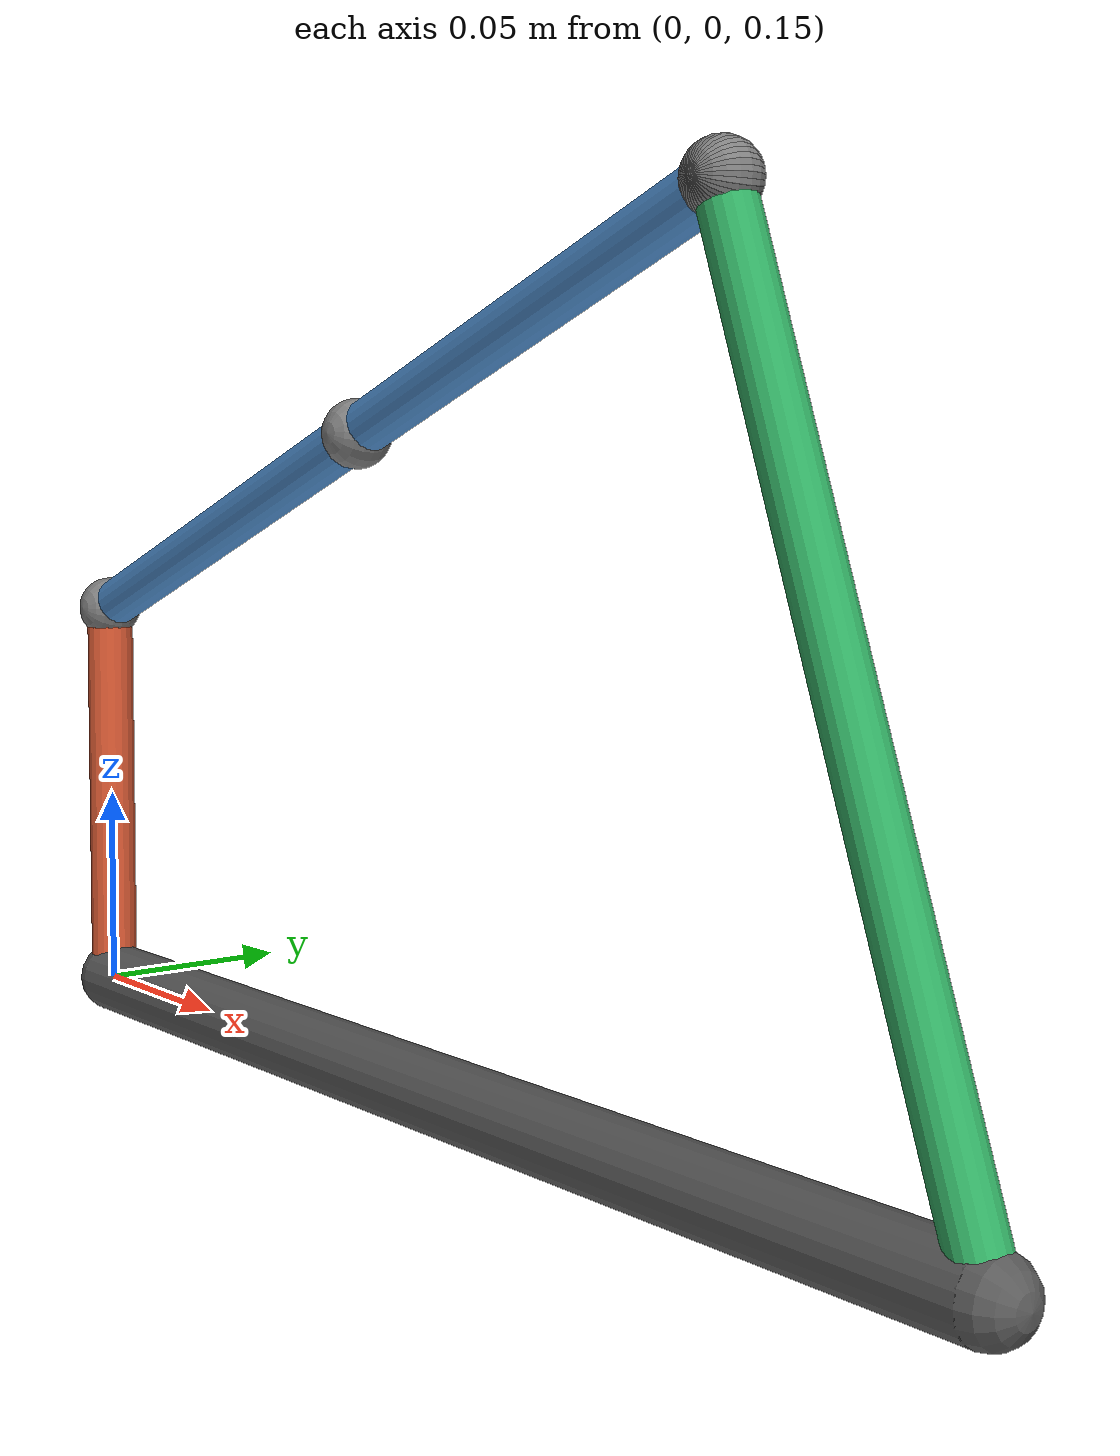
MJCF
<mujoco model="force_transfer_fourbar">
  <compiler angle="radian" />
  <option gravity="0 0 0" timestep=".0005" integrator="implicitfast" jacobian="dense" solver="Newton" iterations="100" tolerance="1e-12">
    <flag contact="disable" island="disable" energy="enable" diagexact="enable" />
  </option>
  <default>
    <joint limited="false" damping="0" armature="0" />
    <geom contype="0" conaffinity="0" />
    <site size=".008" />
  </default>
  <worldbody>
    <body name="frame" pos="0 0 .15" quat="0.70710678118654757 0.70710678118654746 0 0">
      <geom type="capsule" fromto="0 0 0 0.29999999999999999 0 0" size=".009" rgba=".35 .35 .35 1" />
      <body name="crank" pos="0 0 0" quat="0.70710678118654757 0 0 0.70710678118654746">
        <joint name="input" axis="0 0 1" pos="0 0 0" />
        <inertial pos="0.050000000000000003 0 0" mass="0.3" diaginertia="5.4e-06 0.00025270000000000007 0.00025270000000000007" />
        <geom type="capsule" fromto="0 0 0 0.10000000000000001 0 0" size="0.006" rgba=".85 .35 .2 1" />
        <site name="input_tip" pos="0.10000000000000001 0 0" />
        <body name="coupler" pos="0.10000000000000001 0 0" quat="0.82304692171648586 0 0 -0.56797338375404249">
          <joint name="coupler" axis="0 0 1" pos="0 0 0" />
          <inertial pos="0.125 0 0" mass="0.1" diaginertia="1.8000000000000001e-06 0.0005217333333333334 0.0005217333333333334" />
          <geom type="capsule" fromto="0 0 0 0.25 0 0" size="0.006" rgba=".3 .55 .8 1" />
          <site name="coupler_tip" pos="0.25 0 0" />
          <site name="weld_c" pos="0.125 0 0" />
        </body>
      </body>
      <body name="rocker" pos="0.29999999999999999 0 0" quat="0.57821789266207979 0 0 0.81588238650275058">
        <joint name="output" axis="0 0 1" pos="0 0 0" />
        <inertial pos="0.10000000000000001 0 0" mass="0.4" diaginertia="7.2000000000000005e-06 0.0013369333333333336 0.0013369333333333336" />
        <geom type="capsule" fromto="0 0 0 0.20000000000000001 0 0" size="0.006" rgba=".2 .7 .4 1" />
        <site name="output_tip" pos="0.20000000000000001 0 0" />
        <body name="shadow" pos="0.19374999999999992 0.24992186278915257 0" quat="0.71589105316381774 0 0 -0.69821200218844692">
          <joint name="shadow" axis="0 0 1" pos="0.25 0 0" />
          <inertial pos="0.125 0 0" mass="0.1" diaginertia="1.8000000000000001e-06 0.0005217333333333334 0.0005217333333333334" />
          <geom type="capsule" fromto="0 0 0 0.25 0 0" size="0.006" rgba=".2 .8 1 .3" />
          <site name="weld_s" pos="0.125 0 0" />
        </body>
      </body>
    </body>
    <light pos=".2 -1 1" dir="0 1 -1" />
  </worldbody>
  <equality>
    <weld site1="weld_c" site2="weld_s" torquescale=".1" name="loop" solref="0.00999990991577752 1" solimp="0.9890998075176296 0.9890998075176296 .001" />
  </equality>
  <actuator>
    <position name="drive" joint="input" kp="500" kv="5" />
  </actuator>
  <custom>
    <numeric name="reference" data="1.5707963267948966 1.9085072020178422 0.36271348012230697 0.20000000000000001 0.25" />
  </custom>
  <visual>
    <headlight ambient=".5 .5 .5" />
  </visual>
</mujoco>
